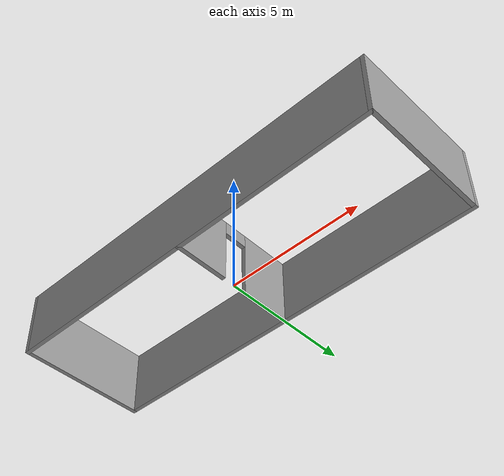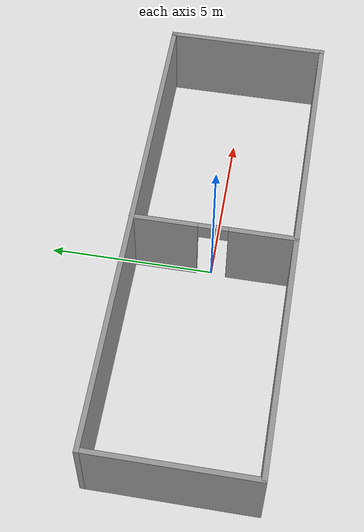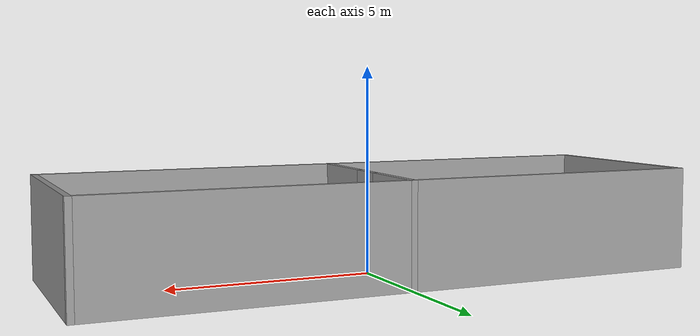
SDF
<?xml version='1.0'?>
<sdf version='1.6'>
  <model name='one_door'>
    <pose frame=''>0 0 0 0 -0 0</pose>
    <link name='Wall_2'>
      <collision name='Wall_2_Collision'>
        <geometry>
          <box>
            <size>15 0.15 2.5</size>
          </box>
        </geometry>
        <pose frame=''>0 0 1.25 0 -0 0</pose>
      </collision>
      <visual name='Wall_2_Visual'>
        <pose frame=''>0 0 1.25 0 -0 0</pose>
        <geometry>
          <box>
            <size>15 0.15 2.5</size>
          </box>
        </geometry>
        <material>
          <script>
            <uri>file://media/materials/scripts/gazebo.material</uri>
            <name>Gazebo/Grey</name>
          </script>
          <ambient>1 1 1 1</ambient>
        </material>
        <meta>
          <layer>0</layer>
        </meta>
      </visual>
      <pose frame=''>-0 -2.42701 0 0 -0 0</pose>
    </link>
    <link name='Wall_3'>
      <collision name='Wall_3_Collision'>
        <geometry>
          <box>
            <size>5 0.15 2.5</size>
          </box>
        </geometry>
        <pose frame=''>0 0 1.25 0 -0 0</pose>
      </collision>
      <visual name='Wall_3_Visual'>
        <pose frame=''>0 0 1.25 0 -0 0</pose>
        <geometry>
          <box>
            <size>5 0.15 2.5</size>
          </box>
        </geometry>
        <material>
          <script>
            <uri>file://media/materials/scripts/gazebo.material</uri>
            <name>Gazebo/Grey</name>
          </script>
          <ambient>1 1 1 1</ambient>
        </material>
        <meta>
          <layer>0</layer>
        </meta>
      </visual>
      <pose frame=''>7.425 -0.002015 0 0 -0 1.5708</pose>
    </link>
    <link name='Wall_4'>
      <collision name='Wall_4_Collision'>
        <geometry>
          <box>
            <size>15 0.15 2.5</size>
          </box>
        </geometry>
        <pose frame=''>0 0 1.25 0 -0 0</pose>
      </collision>
      <visual name='Wall_4_Visual'>
        <pose frame=''>0 0 1.25 0 -0 0</pose>
        <geometry>
          <box>
            <size>15 0.15 2.5</size>
          </box>
        </geometry>
        <material>
          <script>
            <uri>file://media/materials/scripts/gazebo.material</uri>
            <name>Gazebo/Grey</name>
          </script>
          <ambient>1 1 1 1</ambient>
        </material>
        <meta>
          <layer>0</layer>
        </meta>
      </visual>
      <pose frame=''>-0 2.42299 0 0 -0 3.14159</pose>
    </link>
    <link name='Wall_5'>
      <collision name='Wall_5_Collision'>
        <geometry>
          <box>
            <size>5 0.15 2.5</size>
          </box>
        </geometry>
        <pose frame=''>0 0 1.25 0 -0 0</pose>
      </collision>
      <visual name='Wall_5_Visual'>
        <pose frame=''>0 0 1.25 0 -0 0</pose>
        <geometry>
          <box>
            <size>5 0.15 2.5</size>
          </box>
        </geometry>
        <material>
          <script>
            <uri>file://media/materials/scripts/gazebo.material</uri>
            <name>Gazebo/Grey</name>
          </script>
          <ambient>1 1 1 1</ambient>
        </material>
        <meta>
          <layer>0</layer>
        </meta>
      </visual>
      <pose frame=''>-7.425 -0.002015 0 0 -0 -1.5708</pose>
    </link>
    <link name='Wall_7'>
      <pose frame=''>0.0 0.002015 0 0 -0 -1.5708</pose>
      <visual name='Wall_7_Visual_0'>
        <pose frame=''>-1.47678 0 1.25 0 -0 0</pose>
        <geometry>
          <box>
            <size>2.04644 0.15 2.5</size>
          </box>
        </geometry>
        <material>
          <script>
            <uri>file://media/materials/scripts/gazebo.material</uri>
            <name>Gazebo/Grey</name>
          </script>
          <ambient>1 1 1 1</ambient>
        </material>
        <meta>
          <layer>0</layer>
        </meta>
      </visual>
      <collision name='Wall_7_Collision_0'>
        <geometry>
          <box>
            <size>2.04644 0.15 2.5</size>
          </box>
        </geometry>
        <pose frame=''>-1.47678 0 1.25 0 -0 0</pose>
      </collision>
      <visual name='Wall_7_Visual_1'>
        <pose frame=''>1.47322 0 1.25 0 -0 0</pose>
        <geometry>
          <box>
            <size>2.05356 0.15 2.5</size>
          </box>
        </geometry>
        <material>
          <script>
            <uri>file://media/materials/scripts/gazebo.material</uri>
            <name>Gazebo/Grey</name>
          </script>
          <ambient>1 1 1 1</ambient>
        </material>
        <meta>
          <layer>0</layer>
        </meta>
      </visual>
      <collision name='Wall_7_Collision_1'>
        <geometry>
          <box>
            <size>2.05356 0.15 2.5</size>
          </box>
        </geometry>
        <pose frame=''>1.47322 0 1.25 0 -0 0</pose>
      </collision>
      <visual name='Wall_7_Visual_2'>
        <pose frame=''>-0.003561 0 2.25 0 -0 0</pose>
        <geometry>
          <box>
            <size>0.9 0.15 0.5</size>
          </box>
        </geometry>
        <material>
          <script>
            <uri>file://media/materials/scripts/gazebo.material</uri>
            <name>Gazebo/Grey</name>
          </script>
          <ambient>1 1 1 1</ambient>
        </material>
        <meta>
          <layer>0</layer>
        </meta>
      </visual>
      <collision name='Wall_7_Collision_2'>
        <geometry>
          <box>
            <size>0.9 0.15 0.5</size>
          </box>
        </geometry>
        <pose frame=''>-0.003561 0 2.25 0 -0 0</pose>
      </collision>
    </link>
    <static>1</static>
  </model>
</sdf>
